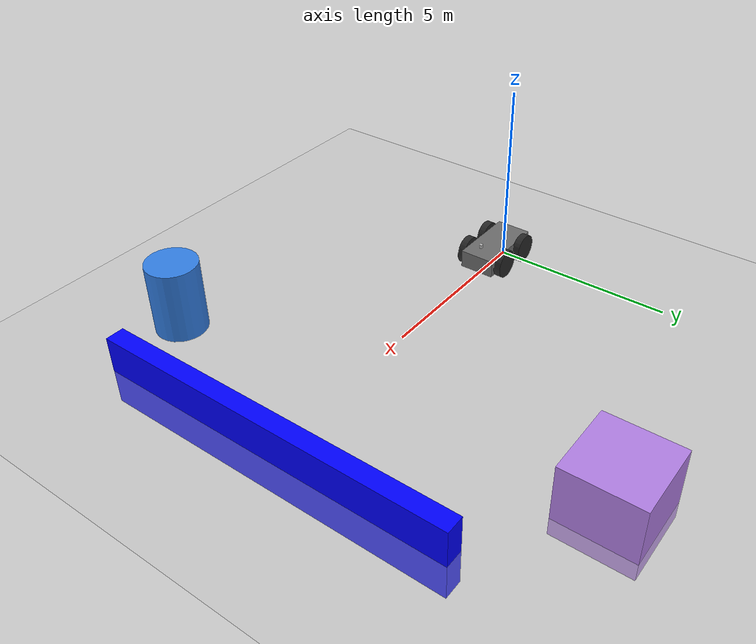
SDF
<?xml version="1.0"?>
<sdf version="1.10">
    <world name="car_world">
        <physics name="1ms" type="ignored">
            <max_step_size>0.001</max_step_size>
            <real_time_factor>1.0</real_time_factor>
        </physics>
        <plugin
            filename="gz-sim-physics-system"
            name="gz::sim::systems::Physics">
        </plugin>
        <plugin
            filename="gz-sim-user-commands-system"
            name="gz::sim::systems::UserCommands">
        </plugin>
        <plugin
            filename="gz-sim-scene-broadcaster-system"
            name="gz::sim::systems::SceneBroadcaster">
        </plugin>
        <plugin filename="gz-sim-sensors-system"
            name="gz::sim::systems::Sensors">
            <render_engine>ogre2</render_engine>
        </plugin>
        <plugin filename="gz-sim-imu-system"
            name="gz::sim::systems::Imu">
        </plugin>
        <plugin filename="gz-sim-contact-system"
            name="gz::sim::systems::Contact">
        </plugin>

        <light type="directional" name="sun">
            <cast_shadows>true</cast_shadows>
            <pose>0 0 10 0 0 0</pose>
            <diffuse>0.8 0.8 0.8 1</diffuse>
            <specular>0.2 0.2 0.2 1</specular>
            <attenuation>
                <range>1000</range>
                <constant>0.9</constant>
                <linear>0.01</linear>
                <quadratic>0.001</quadratic>
            </attenuation>
            <direction>-0.5 0.1 -0.9</direction>
        </light>

        <model name="ground_plane">
            <static>true</static>
            <link name="link">
                <collision name="collision">
                    <geometry>
                        <plane>
                            <normal>0 0 1</normal>
                        </plane>
                    </geometry>
                </collision>
                <visual name="visual">
                    <geometry>
                        <plane>
                            <normal>0 0 1</normal>
                            <size>100 100</size>
                        </plane>
                    </geometry>
                    <material>
                        <ambient>0.8 0.8 0.8 1</ambient>
                        <diffuse>0.8 0.8 0.8 1</diffuse>
                        <specular>0.8 0.8 0.8 1</specular>
                    </material>
                </visual>
            </link>
        </model>

        <model name='vehicle_blue' canonical_link='chassis'>
            <pose relative_to='world'>0 0 0 0 0 0</pose>

            <!-- Chassis-->
            <link name='chassis'>
                <pose relative_to='__model__'>0.5 0 0.4 0 0 0</pose>
                <inertial>
                    <mass>1.14395</mass>
                    <inertia>
                        <ixx>0.095329</ixx>
                        <ixy>0</ixy>
                        <ixz>0</ixz>
                        <iyy>0.381317</iyy>
                        <iyz>0</iyz>
                        <izz>0.476646</izz>
                    </inertia>
                </inertial>
                <visual name='visual'>
                    <geometry>
                        <box>
                            <size>2.0 1.0 0.5</size>
                        </box>
                    </geometry>
                    <material>
                        <ambient>0.42 0.42 0.42 1</ambient>
                        <diffuse>0.42 0.42 0.42 1</diffuse>
                        <specular>0.42 0.42 0.42 1</specular>
                    </material>
                </visual>
                <collision name='collision'>
                    <geometry>
                        <box>
                            <size>2.0 1.0 0.5</size>
                        </box>
                    </geometry>
                </collision>
                <sensor name="imu_sensor" type="imu">
                    <always_on>1</always_on>
                    <update_rate>1</update_rate>
                    <visualize>true</visualize>
                    <topic>imu</topic>
                </sensor>
            </link>

            <!-- Left Rear Wheel-->
            <link name='left_rear_wheel'>
                <pose relative_to='chassis'>-0.5 0.6 0 -1.5707 0 0</pose>
                <inertial>
                    <mass>1</mass>
                    <inertia>
                        <ixx>0.043333</ixx>
                        <ixy>0</ixy>
                        <ixz>0</ixz>
                        <iyy>0.043333</iyy>
                        <iyz>0</iyz>
                        <izz>0.08</izz>
                    </inertia>
                </inertial>
                <visual name='visual'>
                    <geometry>
                        <cylinder>
                            <radius>0.4</radius>
                            <length>0.2</length>
                        </cylinder>
                    </geometry>
                    <material>
                        <ambient>0.161 0.161 0.161 1</ambient>
                        <diffuse>0.161 0.161 0.161 1</diffuse>
                        <specular>0.161 0.161 0.161 1</specular>
                    </material>
                </visual>
                <collision name='collision'>
                    <geometry>
                        <cylinder>
                            <radius>0.4</radius>
                            <length>0.2</length>
                        </cylinder>
                    </geometry>
                </collision>
            </link>

            <!-- Right Rear Wheel-->
            <link name='right_rear_wheel'>
                <pose relative_to='chassis'>-0.5 -0.6 0 -1.5707 0 0</pose>
                <inertial>
                    <mass>1</mass>
                    <inertia>
                        <ixx>0.043333</ixx>
                        <ixy>0</ixy>
                        <ixz>0</ixz>
                        <iyy>0.043333</iyy>
                        <iyz>0</iyz>
                        <izz>0.08</izz>
                    </inertia>
                </inertial>
                <visual name='visual'>
                    <geometry>
                        <cylinder>
                            <radius>0.4</radius>
                            <length>0.2</length>
                        </cylinder>
                    </geometry>
                    <material>
                        <ambient>0.161 0.161 0.161 1</ambient>
                        <diffuse>0.161 0.161 0.161 1</diffuse>
                        <specular>0.161 0.161 0.161 1</specular>
                    </material>
                </visual>
                <collision name='collision'>
                    <geometry>
                        <cylinder>
                            <radius>0.4</radius>
                            <length>0.2</length>
                        </cylinder>
                    </geometry>
                </collision>
            </link>

            <!-- Left Front Wheel-->
            <link name='left_front_wheel'>
                <pose relative_to='chassis'>0.5 0.6 0 -1.5707 0 0</pose>
                <inertial>
                    <mass>1</mass>
                    <inertia>
                        <ixx>0.043333</ixx>
                        <ixy>0</ixy>
                        <ixz>0</ixz>
                        <iyy>0.043333</iyy>
                        <iyz>0</iyz>
                        <izz>0.08</izz>
                    </inertia>
                </inertial>
                <visual name='visual'>
                    <geometry>
                        <cylinder>
                            <radius>0.4</radius>
                            <length>0.2</length>
                        </cylinder>
                    </geometry>
                    <material>
                        <ambient>0.161 0.161 0.161 1</ambient>
                        <diffuse>0.161 0.161 0.161 1</diffuse>
                        <specular>0.161 0.161 0.161 1</specular>
                    </material>
                </visual>
                <collision name='collision'>
                    <geometry>
                        <cylinder>
                            <radius>0.4</radius>
                            <length>0.2</length>
                        </cylinder>
                    </geometry>
                </collision>
            </link>

            <!-- Right Front Wheel-->
            <link name='right_front_wheel'>
                <pose relative_to='chassis'>0.5 -0.6 0 -1.5707 0 0</pose>
                <inertial>
                    <mass>1</mass>
                    <inertia>
                        <ixx>0.043333</ixx>
                        <ixy>0</ixy>
                        <ixz>0</ixz>
                        <iyy>0.043333</iyy>
                        <iyz>0</iyz>
                        <izz>0.08</izz>
                    </inertia>
                </inertial>
                <visual name='visual'>
                    <geometry>
                        <cylinder>
                            <radius>0.4</radius>
                            <length>0.2</length>
                        </cylinder>
                    </geometry>
                    <material>
                        <ambient>0.161 0.161 0.161 1</ambient>
                        <diffuse>0.161 0.161 0.161 1</diffuse>
                        <specular>0.161 0.161 0.161 1</specular>
                    </material>
                </visual>
                <collision name='collision'>
                    <geometry>
                        <cylinder>
                            <radius>0.4</radius>
                            <length>0.2</length>
                        </cylinder>
                    </geometry>
                </collision>
            </link>

            <!-- Left Rear Wheel Joint-->
            <joint name='left_rear_wheel_joint' type='revolute'>
                <pose relative_to='left_rear_wheel' />
                <parent>chassis</parent>
                <child>left_rear_wheel</child>
                <axis>
                    <xyz expressed_in='__model__'>0 1 0</xyz>
                    <limit>
                        <!-- negative infinity-->
                        <lower>-1.79769e+308</lower>
                        <!-- positive infinity-->
                        <upper>1.79769e+308</upper>
                    </limit>
                </axis>
            </joint>

            <!-- Right Rear Wheel Joint-->
            <joint name='right_rear_wheel_joint' type='revolute'>
                <pose relative_to='right_rear_wheel' />
                <parent>chassis</parent>
                <child>right_rear_wheel</child>
                <axis>
                    <xyz expressed_in='__model__'>0 1 0</xyz>
                    <limit>
                        <!-- negative infinity-->
                        <lower>-1.79769e+308</lower>
                        <!-- positive infinity-->
                        <upper>1.79769e+308</upper>
                    </limit>
                </axis>
            </joint>

            <!-- Left Front Wheel Joint-->
            <joint name='left_front_wheel_joint' type='revolute'>
                <pose relative_to='left_front_wheel' />
                <parent>chassis</parent>
                <child>left_front_wheel</child>
                <axis>
                    <xyz expressed_in='__model__'>0 1 0</xyz>
                    <limit>
                        <!-- negative infinity-->
                        <lower>-1.79769e+308</lower>
                        <!-- positive infinity-->
                        <upper>1.79769e+308</upper>
                    </limit>
                </axis>
            </joint>

            <!-- RIght Front Wheel Joint-->
            <joint name='right_front_wheel_joint' type='revolute'>
                <pose relative_to='right_front_wheel' />
                <parent>chassis</parent>
                <child>right_front_wheel</child>
                <axis>
                    <xyz expressed_in='__model__'>0 1 0</xyz>
                    <limit>
                        <!-- negative infinity-->
                        <lower>-1.79769e+308</lower>
                        <!-- positive infinity-->
                        <upper>1.79769e+308</upper>
                    </limit>
                </axis>
            </joint>

            <!-- Differential Drive Plugin-->
            <plugin filename="gz-sim-diff-drive-system"
                name="gz::sim::systems::DiffDrive">
                <left_joint>left_front_wheel_joint</left_joint>
                <left_joint>left_rear_wheel_joint</left_joint>
                <right_joint>right_front_wheel_joint</right_joint>
                <right_joint>right_rear_wheel_joint</right_joint>
                <wheel_separation>1.2</wheel_separation>
                <wheel_radius>0.4</wheel_radius>
                <odom_publish_frequency>1</odom_publish_frequency>
                <topic>cmd_vel</topic>
            </plugin>

            <!-- Lidar-->
            <link name='lidar_link'>
                <pose relative_to='chassis'>0.8 0 0.5 0 0 0</pose>
                <inertial>
                    <mass>0.1</mass>
                    <inertia>
                        <ixx>0.000166667</ixx>
                        <iyy>0.000166667</iyy>
                        <izz>0.000166667</izz>
                    </inertia>
                </inertial>
                <visual name='visual'>
                    <geometry>
                        <cylinder>
                            <radius>0.05</radius>
                            <length>0.1</length>
                        </cylinder>
                    </geometry>
                </visual>
                <sensor name='gpu_lidar' type='gpu_lidar'>
                    <topic>lidar</topic>
                    <update_rate>10</update_rate>
                    <lidar>
                        <scan>
                            <horizontal>
                                <samples>640</samples>
                                <resolution>1</resolution>
                                <min_angle>-1.396263</min_angle>
                                <max_angle>1.396263</max_angle>
                            </horizontal>
                        </scan>
                        <range>
                            <min>0.08</min>
                            <max>10.0</max>
                        </range>
                    </lidar>
                    <visualize>true</visualize>
                </sensor>
            </link>

            <!-- Lidar Joint-->
            <joint name='lidar_joint' type='fixed'>
                <parent>chassis</parent>
                <child>lidar_link</child>
            </joint>
        </model>

        <!-- Wall-->
        <model name='wall'>
            <static>true</static>
            <pose>10 0 0 0 0 0</pose>
            <link name='box'>
                <visual name='visual'>
                    <geometry>
                        <box>
                            <size>0.5 10.0 2.0</size>
                        </box>
                    </geometry>
                    <material>
                        <ambient>0.0 0.0 1.0 1</ambient>
                        <diffuse>0.0 0.0 1.0 1</diffuse>
                        <specular>0.0 0.0 1.0 1</specular>
                    </material>
                </visual>
                <collision name='collision'>
                    <geometry>
                        <box>
                            <size>0.5 10.0 2.0</size>
                        </box>
                    </geometry>
                </collision>
                <sensor name='sensor_contact' type='contact'>
                    <contact>
                        <collision>collision</collision>
                    </contact>
                </sensor>
            </link>
            <plugin filename="gz-sim-touchplugin-system"
                name="gz::sim::systems::TouchPlugin">
                <target>vehicle_blue</target>
                <namespace>wall</namespace>
                <time>0.001</time>
                <enabled>true</enabled>
            </plugin>
        </model>

        <!-- Box -->
        <model name='box'>
            <static>true</static>
            <pose>7 7 0.5 0 0 0</pose>
            <link name='box'>
                <visual name='visual'>
                    <geometry>
                        <box>
                            <size>2 2 2</size>
                        </box>
                    </geometry>
                    <material>
                        <ambient>0.7 0.5 0.9 1</ambient>
                        <diffuse>0.7 0.5 0.9 1</diffuse>
                        <specular>0.7 0.5 0.9 1</specular>
                    </material>
                </visual>
                <collision name='collision'>
                    <geometry>
                        <box>
                            <size>2 2 2</size>
                        </box>
                    </geometry>
                </collision>
                <sensor name='sensor_contact' type='contact'>
                    <contact>
                        <collision>collision</collision>
                    </contact>
                </sensor>
            </link>
            <plugin filename="gz-sim-touchplugin-system"
                name="gz::sim::systems::TouchPlugin">
                <target>vehicle_blue</target>
                <namespace>wall</namespace>
                <time>0.001</time>
                <enabled>true</enabled>
            </plugin>
        </model>

        <!-- Barrel -->
        <model name='barrel'>
            <static>true</static>
            <pose>8 -5 1 0 0 0</pose>
            <link name='box'>
                <visual name='visual'>
                    <geometry>
                        <cylinder>
                            <radius>0.7</radius>
                            <length>2</length>
                        </cylinder>
                    </geometry>
                    <material>
                        <ambient>0.2 0.5 0.9 1</ambient>
                        <diffuse>0.2 0.5 0.9 1</diffuse>
                        <specular>0.2 0.5 0.9 1</specular>
                    </material>
                </visual>
                <collision name='collision'>
                    <geometry>
                        <cylinder>
                            <radius>0.7</radius>
                            <length>2</length>
                        </cylinder>
                    </geometry>
                </collision>
                <sensor name='sensor_contact' type='contact'>
                    <contact>
                        <collision>collision</collision>
                    </contact>
                </sensor>
            </link>
            <plugin filename="gz-sim-touchplugin-system"
                name="gz::sim::systems::TouchPlugin">
                <target>vehicle_blue</target>
                <namespace>wall</namespace>
                <time>0.001</time>
                <enabled>true</enabled>
            </plugin>
        </model>

        <!-- Moving Forward-->
        <plugin filename="gz-sim-triggered-publisher-system"
            name="gz::sim::systems::TriggeredPublisher">
            <input type="gz.msgs.Int32" topic="/keyboard/keypress">
                <match field="data">16777235</match>
            </input>
            <output type="gz.msgs.Twist" topic="/cmd_vel">
                linear: {x: 0.5}, angular: {z: 0.0}
            </output>
        </plugin>

        <!-- Moving Backward-->
        <plugin filename="gz-sim-triggered-publisher-system"
            name="gz::sim::systems::TriggeredPublisher">
            <input type="gz.msgs.Int32" topic="/keyboard/keypress">
                <match field="data">16777237</match>
            </input>
            <output type="gz.msgs.Twist" topic="/cmd_vel">
                linear: {x: -0.5}, angular: {z: 0.0}
            </output>
        </plugin>

        <!-- Moving Left-->
        <plugin filename="gz-sim-triggered-publisher-system"
            name="gz::sim::systems::TriggeredPublisher">
            <input type="gz.msgs.Int32" topic="/keyboard/keypress">
                <match field="data">16777234</match>
            </input>
            <output type="gz.msgs.Twist" topic="/cmd_vel">
                linear: {x: 0.0}, angular: {z: 0.5}
            </output>
        </plugin>

        <!-- Moving Right-->
        <plugin filename="gz-sim-triggered-publisher-system"
            name="gz::sim::systems::TriggeredPublisher">
            <input type="gz.msgs.Int32" topic="/keyboard/keypress">
                <match field="data">16777236</match>
            </input>
            <output type="gz.msgs.Twist" topic="/cmd_vel">
                linear: {x: 0.0}, angular: {z: -0.5}
            </output>
        </plugin>

        <!-- Stop When Hit The Wall-->
        <plugin filename="gz-sim-triggered-publisher-system"
            name="gz::sim::systems::TriggeredPublisher">
            <input type="gz.msgs.Boolean" topic="/wall/touched">
                <match>data: true</match>
            </input>
            <output type="gz.msgs.Twist" topic="/cmd_vel">
                linear: {x: 0.0}, angular: {z: 0.0}
            </output>
        </plugin>
    </world>
</sdf>
